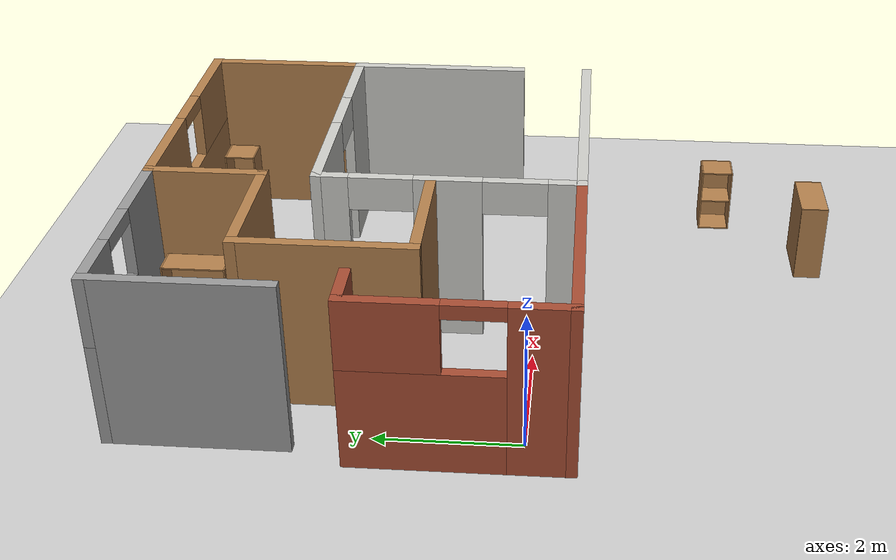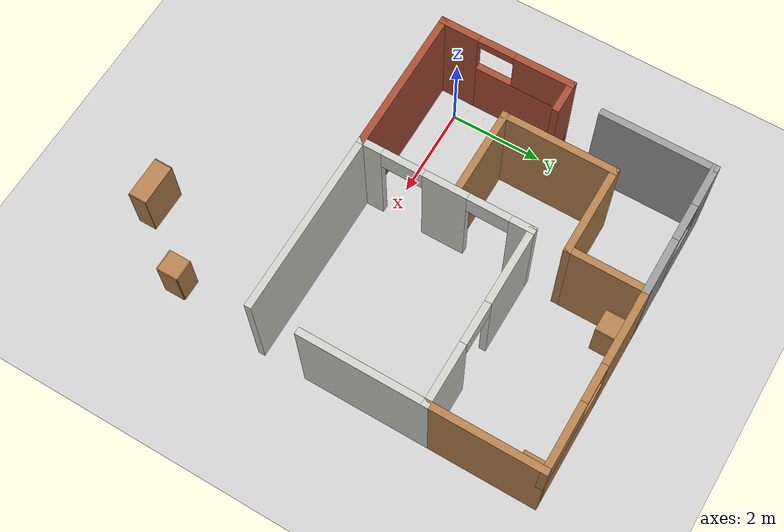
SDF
<sdf version="1.7">
 <world name="default">
  <model name="ground_plane">
   <static>1</static>
   <link name="link">
    <collision name="collision">
     <geometry><plane><normal>0 0 1</normal><size>100 100</size></plane></geometry>
     <surface><friction><ode><mu>100</mu><mu2>50</mu2></ode></friction></surface>
    </collision>
    <visual name="visual">
     <cast_shadows>0</cast_shadows>
     <geometry><plane><normal>0 0 1</normal><size>100 100</size></plane></geometry>
     <material>
      <script><uri>file://media/materials/scripts/gazebo.material</uri><name>Gazebo/Grey</name></script>
     </material>
    </visual>
   </link>
  </model>
  <model name="closed_room">
   <pose>2.96001 2.39593 0 0 -0 0</pose>
   <link name="Wall_0">
    <pose>-0.375 -1.175 0 0 -0 -1.5708</pose>
    <visual name="Wall_0_Visual_0">
     <pose>-1.648 0 1.25 0 -0 0</pose>
     <geometry><box><size>0.524006 0.15 2.5</size></box></geometry>
     <material>
      <script><uri>file://media/materials/scripts/gazebo.material</uri><name>Gazebo/CeilingTiled</name></script>
      <ambient>1 1 1 1</ambient>
     </material>
     <meta><layer>0</layer></meta>
    </visual>
    <collision name="Wall_0_Collision_0">
     <geometry><box><size>0.524006 0.15 2.5</size></box></geometry>
     <pose>-1.648 0 1.25 0 -0 0</pose>
    </collision>
    <visual name="Wall_0_Visual_1">
     <pose>-0.006994 0 1.25 0 -0 0</pose>
     <geometry><box><size>0.958001 0.15 2.5</size></box></geometry>
     <material>
      <script><uri>file://media/materials/scripts/gazebo.material</uri><name>Gazebo/CeilingTiled</name></script>
      <ambient>1 1 1 1</ambient>
     </material>
     <meta><layer>0</layer></meta>
    </visual>
    <collision name="Wall_0_Collision_1">
     <geometry><box><size>0.958001 0.15 2.5</size></box></geometry>
     <pose>-0.006994 0 1.25 0 -0 0</pose>
    </collision>
    <visual name="Wall_0_Visual_2">
     <pose>1.641 0 1.25 0 -0 0</pose>
     <geometry><box><size>0.537993 0.15 2.5</size></box></geometry>
     <material>
      <script><uri>file://media/materials/scripts/gazebo.material</uri><name>Gazebo/CeilingTiled</name></script>
      <ambient>1 1 1 1</ambient>
     </material>
     <meta><layer>0</layer></meta>
    </visual>
    <collision name="Wall_0_Collision_2">
     <geometry><box><size>0.537993 0.15 2.5</size></box></geometry>
     <pose>1.641 0 1.25 0 -0 0</pose>
    </collision>
    <visual name="Wall_0_Visual_3">
     <pose>-0.935994 0 2.25 0 -0 0</pose>
     <geometry><box><size>0.9 0.15 0.5</size></box></geometry>
     <material>
      <script><uri>file://media/materials/scripts/gazebo.material</uri><name>Gazebo/CeilingTiled</name></script>
      <ambient>1 1 1 1</ambient>
     </material>
     <meta><layer>0</layer></meta>
    </visual>
    <collision name="Wall_0_Collision_3">
     <geometry><box><size>0.9 0.15 0.5</size></box></geometry>
     <pose>-0.935994 0 2.25 0 -0 0</pose>
    </collision>
    <visual name="Wall_0_Visual_4">
     <pose>0.922007 0 2.25 0 -0 0</pose>
     <geometry><box><size>0.9 0.15 0.5</size></box></geometry>
     <material>
      <script><uri>file://media/materials/scripts/gazebo.material</uri><name>Gazebo/CeilingTiled</name></script>
      <ambient>1 1 1 1</ambient>
     </material>
     <meta><layer>0</layer></meta>
    </visual>
    <collision name="Wall_0_Collision_4">
     <geometry><box><size>0.9 0.15 0.5</size></box></geometry>
     <pose>0.922007 0 2.25 0 -0 0</pose>
    </collision>
   </link>
   <link name="Wall_1">
    <collision name="Wall_1_Collision">
     <geometry><box><size>4 0.15 2.5</size></box></geometry>
     <pose>0 0 1.25 0 -0 0</pose>
    </collision>
    <visual name="Wall_1_Visual">
     <pose>0 0 1.25 0 -0 0</pose>
     <geometry><box><size>4 0.15 2.5</size></box></geometry>
     <material>
      <script><uri>file://media/materials/scripts/gazebo.material</uri><name>Gazebo/CeilingTiled</name></script>
      <ambient>1 1 1 1</ambient>
     </material>
     <meta><layer>0</layer></meta>
    </visual>
    <pose>1.55 -3.01 0 0 -0 0</pose>
   </link>
   <link name="Wall_10">
    <pose>1.55 3.01 0 0 -0 0</pose>
    <visual name="Wall_10_Visual_0">
     <pose>-1.14373 0 1.25 0 -0 0</pose>
     <geometry><box><size>1.71255 0.15 2.5</size></box></geometry>
     <material>
      <script><uri>file://media/materials/scripts/gazebo.material</uri><name>Gazebo/Wood</name></script>
      <ambient>1 1 1 1</ambient>
     </material>
     <meta><layer>0</layer></meta>
    </visual>
    <collision name="Wall_10_Collision_0">
     <geometry><box><size>1.71255 0.15 2.5</size></box></geometry>
     <pose>-1.14373 0 1.25 0 -0 0</pose>
    </collision>
    <visual name="Wall_10_Visual_1">
     <pose>0.856275 0 0.75 0 -0 0</pose>
     <geometry><box><size>2.28745 0.15 1.5</size></box></geometry>
     <material>
      <script><uri>file://media/materials/scripts/gazebo.material</uri><name>Gazebo/Wood</name></script>
      <ambient>1 1 1 1</ambient>
     </material>
     <meta><layer>0</layer></meta>
    </visual>
    <collision name="Wall_10_Collision_1">
     <geometry><box><size>2.28745 0.15 1.5</size></box></geometry>
     <pose>0.856275 0 0.75 0 -0 0</pose>
    </collision>
    <visual name="Wall_10_Visual_2">
     <pose>1.25628 0 2 0 -0 0</pose>
     <geometry><box><size>1.48745 0.15 1</size></box></geometry>
     <material>
      <script><uri>file://media/materials/scripts/gazebo.material</uri><name>Gazebo/Wood</name></script>
      <ambient>1 1 1 1</ambient>
     </material>
     <meta><layer>0</layer></meta>
    </visual>
    <collision name="Wall_10_Collision_2">
     <geometry><box><size>1.48745 0.15 1</size></box></geometry>
     <pose>1.25628 0 2 0 -0 0</pose>
    </collision>
    <visual name="Wall_10_Visual_3">
     <pose>0.112549 0 2.4 0 -0 0</pose>
     <geometry><box><size>0.8 0.15 0.2</size></box></geometry>
     <material>
      <script><uri>file://media/materials/scripts/gazebo.material</uri><name>Gazebo/Wood</name></script>
      <ambient>1 1 1 1</ambient>
     </material>
     <meta><layer>0</layer></meta>
    </visual>
    <collision name="Wall_10_Collision_3">
     <geometry><box><size>0.8 0.15 0.2</size></box></geometry>
     <pose>0.112549 0 2.4 0 -0 0</pose>
    </collision>
   </link>
   <link name="Wall_11">
    <collision name="Wall_11_Collision">
     <geometry><box><size>2.5 0.15 2.5</size></box></geometry>
     <pose>0 0 1.25 0 -0 0</pose>
    </collision>
    <visual name="Wall_11_Visual">
     <pose>0 0 1.25 0 -0 0</pose>
     <geometry><box><size>2.5 0.15 2.5</size></box></geometry>
     <material>
      <script><uri>file://media/materials/scripts/gazebo.material</uri><name>Gazebo/Wood</name></script>
      <ambient>1 1 1 1</ambient>
     </material>
     <meta><layer>0</layer></meta>
    </visual>
    <pose>3.475 1.835 0 0 -0 -1.5708</pose>
   </link>
   <link name="Wall_13">
    <collision name="Wall_13_Collision">
     <geometry><box><size>1.75 0.15 2.5</size></box></geometry>
     <pose>0 0 1.25 0 -0 0</pose>
    </collision>
    <visual name="Wall_13_Visual">
     <pose>0 0 1.25 0 -0 0</pose>
     <geometry><box><size>1.75 0.15 2.5</size></box></geometry>
     <material>
      <script><uri>file://media/materials/scripts/gazebo.material</uri><name>Gazebo/Wood</name></script>
      <ambient>1 1 1 1</ambient>
     </material>
     <meta><layer>0</layer></meta>
    </visual>
    <pose>-0.375 2.21 0 0 -0 -1.5708</pose>
   </link>
   <link name="Wall_14">
    <collision name="Wall_14_Collision">
     <geometry><box><size>2 0.15 2.5</size></box></geometry>
     <pose>0 0 1.25 0 -0 0</pose>
    </collision>
    <visual name="Wall_14_Visual">
     <pose>0 0 1.25 0 -0 0</pose>
     <geometry><box><size>2 0.15 2.5</size></box></geometry>
     <material>
      <script><uri>file://media/materials/scripts/gazebo.material</uri><name>Gazebo/Wood</name></script>
      <ambient>1 1 1 1</ambient>
     </material>
     <meta><layer>0</layer></meta>
    </visual>
    <pose>-1.3 1.41 0 0 -0 3.14159</pose>
   </link>
   <link name="Wall_15">
    <collision name="Wall_15_Collision">
     <geometry><box><size>2.5 0.15 2.5</size></box></geometry>
     <pose>0 0 1.25 0 -0 0</pose>
    </collision>
    <visual name="Wall_15_Visual">
     <pose>0 0 1.25 0 -0 0</pose>
     <geometry><box><size>2.5 0.15 2.5</size></box></geometry>
     <material>
      <script><uri>file://media/materials/scripts/gazebo.material</uri><name>Gazebo/Wood</name></script>
      <ambient>1 1 1 1</ambient>
     </material>
     <meta><layer>0</layer></meta>
    </visual>
    <pose>-2.225 0.235 0 0 -0 -1.5708</pose>
   </link>
   <link name="Wall_16">
    <collision name="Wall_16_Collision">
     <geometry><box><size>2 0.15 2.5</size></box></geometry>
     <pose>0 0 1.25 0 -0 0</pose>
    </collision>
    <visual name="Wall_16_Visual">
     <pose>0 0 1.25 0 -0 0</pose>
     <geometry><box><size>2 0.15 2.5</size></box></geometry>
     <material>
      <script><uri>file://media/materials/scripts/gazebo.material</uri><name>Gazebo/Wood</name></script>
      <ambient>1 1 1 1</ambient>
     </material>
     <meta><layer>0</layer></meta>
    </visual>
    <pose>-1.3 -0.94 0 0 -0 0</pose>
   </link>
   <link name="Wall_18">
    <collision name="Wall_18_Collision">
     <geometry><box><size>3.25 0.15 2.5</size></box></geometry>
     <pose>0 0 1.25 0 -0 0</pose>
    </collision>
    <visual name="Wall_18_Visual">
     <pose>0 0 1.25 0 -0 0</pose>
     <geometry><box><size>3.25 0.15 2.5</size></box></geometry>
     <material>
      <script><uri>file://media/materials/scripts/gazebo.material</uri><name>Gazebo/Bricks</name></script>
      <ambient>1 1 1 1</ambient>
     </material>
     <meta><layer>0</layer></meta>
    </visual>
    <pose>-1.925 -3.01 0 0 -0 3.14159</pose>
   </link>
   <link name="Wall_19">
    <pose>-3.475 -1.585 0 0 -0 1.5708</pose>
    <visual name="Wall_19_Visual_0">
     <pose>-1.05478 0 1.25 0 -0 0</pose>
     <geometry><box><size>0.89045 0.15 2.5</size></box></geometry>
     <material>
      <script><uri>file://media/materials/scripts/gazebo.material</uri><name>Gazebo/Bricks</name></script>
      <ambient>1 1 1 1</ambient>
     </material>
     <meta><layer>0</layer></meta>
    </visual>
    <collision name="Wall_19_Collision_0">
     <geometry><box><size>0.89045 0.15 2.5</size></box></geometry>
     <pose>-1.05478 0 1.25 0 -0 0</pose>
    </collision>
    <visual name="Wall_19_Visual_1">
     <pose>0.445225 0 0.75 0 -0 0</pose>
     <geometry><box><size>2.10955 0.15 1.5</size></box></geometry>
     <material>
      <script><uri>file://media/materials/scripts/gazebo.material</uri><name>Gazebo/Bricks</name></script>
      <ambient>1 1 1 1</ambient>
     </material>
     <meta><layer>0</layer></meta>
    </visual>
    <collision name="Wall_19_Collision_1">
     <geometry><box><size>2.10955 0.15 1.5</size></box></geometry>
     <pose>0.445225 0 0.75 0 -0 0</pose>
    </collision>
    <visual name="Wall_19_Visual_2">
     <pose>0.845225 0 2 0 -0 0</pose>
     <geometry><box><size>1.30955 0.15 1</size></box></geometry>
     <material>
      <script><uri>file://media/materials/scripts/gazebo.material</uri><name>Gazebo/Bricks</name></script>
      <ambient>1 1 1 1</ambient>
     </material>
     <meta><layer>0</layer></meta>
    </visual>
    <collision name="Wall_19_Collision_2">
     <geometry><box><size>1.30955 0.15 1</size></box></geometry>
     <pose>0.845225 0 2 0 -0 0</pose>
    </collision>
    <visual name="Wall_19_Visual_3">
     <pose>-0.20955 0 2.4 0 -0 0</pose>
     <geometry><box><size>0.8 0.15 0.2</size></box></geometry>
     <material>
      <script><uri>file://media/materials/scripts/gazebo.material</uri><name>Gazebo/Bricks</name></script>
      <ambient>1 1 1 1</ambient>
     </material>
     <meta><layer>0</layer></meta>
    </visual>
    <collision name="Wall_19_Collision_3">
     <geometry><box><size>0.8 0.15 0.2</size></box></geometry>
     <pose>-0.20955 0 2.4 0 -0 0</pose>
    </collision>
   </link>
   <link name="Wall_21">
    <collision name="Wall_21_Collision">
     <geometry><box><size>0.75 0.15 2.5</size></box></geometry>
     <pose>0 0 1.25 0 -0 0</pose>
    </collision>
    <visual name="Wall_21_Visual">
     <pose>0 0 1.25 0 -0 0</pose>
     <geometry><box><size>0.75 0.15 2.5</size></box></geometry>
     <material>
      <script><uri>file://media/materials/scripts/gazebo.material</uri><name>Gazebo/Bricks</name></script>
      <ambient>1 1 1 1</ambient>
     </material>
     <meta><layer>0</layer></meta>
    </visual>
    <pose>-3.175 -0.16 0 0 -0 0</pose>
   </link>
   <link name="Wall_29">
    <pose>-1.8 3.01 0 0 -0 3.14159</pose>
    <visual name="Wall_29_Visual_0">
     <pose>-0.881653 0 1.25 0 -0 0</pose>
     <geometry><box><size>1.23669 0.15 2.5</size></box></geometry>
     <material>
      <script><uri>file://media/materials/scripts/gazebo.material</uri><name>Gazebo/Grey</name></script>
      <ambient>1 1 1 1</ambient>
     </material>
     <meta><layer>0</layer></meta>
    </visual>
    <collision name="Wall_29_Collision_0">
     <geometry><box><size>1.23669 0.15 2.5</size></box></geometry>
     <pose>-0.881653 0 1.25 0 -0 0</pose>
    </collision>
    <visual name="Wall_29_Visual_1">
     <pose>0.618347 0 0.75 0 -0 0</pose>
     <geometry><box><size>1.76331 0.15 1.5</size></box></geometry>
     <material>
      <script><uri>file://media/materials/scripts/gazebo.material</uri><name>Gazebo/Grey</name></script>
      <ambient>1 1 1 1</ambient>
     </material>
     <meta><layer>0</layer></meta>
    </visual>
    <collision name="Wall_29_Collision_1">
     <geometry><box><size>1.76331 0.15 1.5</size></box></geometry>
     <pose>0.618347 0 0.75 0 -0 0</pose>
    </collision>
    <visual name="Wall_29_Visual_2">
     <pose>1.01835 0 2 0 -0 0</pose>
     <geometry><box><size>0.963306 0.15 1</size></box></geometry>
     <material>
      <script><uri>file://media/materials/scripts/gazebo.material</uri><name>Gazebo/Grey</name></script>
      <ambient>1 1 1 1</ambient>
     </material>
     <meta><layer>0</layer></meta>
    </visual>
    <collision name="Wall_29_Collision_2">
     <geometry><box><size>0.963306 0.15 1</size></box></geometry>
     <pose>1.01835 0 2 0 -0 0</pose>
    </collision>
    <visual name="Wall_29_Visual_3">
     <pose>0.136694 0 2.4 0 -0 0</pose>
     <geometry><box><size>0.8 0.15 0.2</size></box></geometry>
     <material>
      <script><uri>file://media/materials/scripts/gazebo.material</uri><name>Gazebo/Grey</name></script>
      <ambient>1 1 1 1</ambient>
     </material>
     <meta><layer>0</layer></meta>
    </visual>
    <collision name="Wall_29_Collision_3">
     <geometry><box><size>0.8 0.15 0.2</size></box></geometry>
     <pose>0.136694 0 2.4 0 -0 0</pose>
    </collision>
   </link>
   <link name="Wall_30">
    <collision name="Wall_30_Collision">
     <geometry><box><size>2.5 0.15 2.5</size></box></geometry>
     <pose>0 0 1.25 0 -0 0</pose>
    </collision>
    <visual name="Wall_30_Visual">
     <pose>0 0 1.25 0 -0 0</pose>
     <geometry><box><size>2.5 0.15 2.5</size></box></geometry>
     <material>
      <script><uri>file://media/materials/scripts/gazebo.material</uri><name>Gazebo/Grey</name></script>
      <ambient>1 1 1 1</ambient>
     </material>
     <meta><layer>0</layer></meta>
    </visual>
    <pose>-3.225 1.835 0 0 -0 -1.5708</pose>
   </link>
   <link name="Wall_6">
    <pose>1.55 0.66 0 0 -0 0</pose>
    <visual name="Wall_6_Visual_0">
     <pose>-1.1325 0 1.25 0 -0 0</pose>
     <geometry><box><size>1.735 0.15 2.5</size></box></geometry>
     <material>
      <script><uri>file://media/materials/scripts/gazebo.material</uri><name>Gazebo/CeilingTiled</name></script>
      <ambient>1 1 1 1</ambient>
     </material>
     <meta><layer>0</layer></meta>
    </visual>
    <collision name="Wall_6_Collision_0">
     <geometry><box><size>1.735 0.15 2.5</size></box></geometry>
     <pose>-1.1325 0 1.25 0 -0 0</pose>
    </collision>
    <visual name="Wall_6_Visual_1">
     <pose>1.3175 0 1.25 0 -0 0</pose>
     <geometry><box><size>1.365 0.15 2.5</size></box></geometry>
     <material>
      <script><uri>file://media/materials/scripts/gazebo.material</uri><name>Gazebo/CeilingTiled</name></script>
      <ambient>1 1 1 1</ambient>
     </material>
     <meta><layer>0</layer></meta>
    </visual>
    <collision name="Wall_6_Collision_1">
     <geometry><box><size>1.365 0.15 2.5</size></box></geometry>
     <pose>1.3175 0 1.25 0 -0 0</pose>
    </collision>
    <visual name="Wall_6_Visual_2">
     <pose>0.185 0 2.25 0 -0 0</pose>
     <geometry><box><size>0.9 0.15 0.5</size></box></geometry>
     <material>
      <script><uri>file://media/materials/scripts/gazebo.material</uri><name>Gazebo/CeilingTiled</name></script>
      <ambient>1 1 1 1</ambient>
     </material>
     <meta><layer>0</layer></meta>
    </visual>
    <collision name="Wall_6_Collision_2">
     <geometry><box><size>0.9 0.15 0.5</size></box></geometry>
     <pose>0.185 0 2.25 0 -0 0</pose>
    </collision>
   </link>
   <link name="Wall_7">
    <collision name="Wall_7_Collision">
     <geometry><box><size>2.75 0.15 2.5</size></box></geometry>
     <pose>0 0 1.25 0 -0 0</pose>
    </collision>
    <visual name="Wall_7_Visual">
     <pose>0 0 1.25 0 -0 0</pose>
     <geometry><box><size>2.75 0.15 2.5</size></box></geometry>
     <material>
      <script><uri>file://media/materials/scripts/gazebo.material</uri><name>Gazebo/CeilingTiled</name></script>
      <ambient>1 1 1 1</ambient>
     </material>
     <meta><layer>0</layer></meta>
    </visual>
    <pose>3.475 -0.64 0 0 -0 -1.5708</pose>
   </link>
   <static>1</static>
  </model>
  <model name="bookshelf_1">
   <static>1</static>
   <link name="link">
    <inertial><mass>1</mass></inertial>
    <collision name="back">
     <pose>0 0.005 0.6 0 -0 0</pose>
     <geometry><box><size>0.9 0.01 1.2</size></box></geometry>
    </collision>
    <visual name="visual1">
     <pose>0 0.005 0.6 0 -0 0</pose>
     <geometry><box><size>0.9 0.01 1.2</size></box></geometry>
     <material>
      <script><uri>file://media/materials/scripts/gazebo.material</uri><name>Gazebo/Wood</name></script>
     </material>
    </visual>
    <collision name="left_side">
     <pose>0.45 -0.195 0.6 0 -0 0</pose>
     <geometry><box><size>0.02 0.4 1.2</size></box></geometry>
    </collision>
    <visual name="visual2">
     <pose>0.45 -0.195 0.6 0 -0 0</pose>
     <geometry><box><size>0.02 0.4 1.2</size></box></geometry>
     <material>
      <script><uri>file://media/materials/scripts/gazebo.material</uri><name>Gazebo/Wood</name></script>
     </material>
    </visual>
    <collision name="right_side">
     <pose>-0.45 -0.195 0.6 0 -0 0</pose>
     <geometry><box><size>0.02 0.4 1.2</size></box></geometry>
    </collision>
    <visual name="visual3">
     <pose>-0.45 -0.195 0.6 0 -0 0</pose>
     <geometry><box><size>0.02 0.4 1.2</size></box></geometry>
     <material>
      <script><uri>file://media/materials/scripts/gazebo.material</uri><name>Gazebo/Wood</name></script>
     </material>
    </visual>
    <collision name="bottom">
     <pose>0 -0.195 0.03 0 -0 0</pose>
     <geometry><box><size>0.88 0.4 0.06</size></box></geometry>
    </collision>
    <visual name="visual4">
     <pose>0 -0.195 0.03 0 -0 0</pose>
     <geometry><box><size>0.88 0.4 0.06</size></box></geometry>
     <material>
      <script><uri>file://media/materials/scripts/gazebo.material</uri><name>Gazebo/Wood</name></script>
     </material>
    </visual>
    <collision name="top">
     <pose>0 -0.195 1.19 0 -0 0</pose>
     <geometry><box><size>0.88 0.4 0.02</size></box></geometry>
    </collision>
    <visual name="visual5">
     <pose>0 -0.195 1.19 0 -0 0</pose>
     <geometry><box><size>0.88 0.4 0.02</size></box></geometry>
     <material>
      <script><uri>file://media/materials/scripts/gazebo.material</uri><name>Gazebo/Wood</name></script>
     </material>
    </visual>
    <collision name="low_shelf">
     <pose>0 -0.195 0.43 0 -0 0</pose>
     <geometry><box><size>0.88 0.4 0.02</size></box></geometry>
    </collision>
    <visual name="visual6">
     <pose>0 -0.195 0.43 0 -0 0</pose>
     <geometry><box><size>0.88 0.4 0.02</size></box></geometry>
     <material>
      <script><uri>file://media/materials/scripts/gazebo.material</uri><name>Gazebo/Wood</name></script>
     </material>
    </visual>
    <collision name="high_shelf">
     <pose>0 -0.195 0.8 0 -0 0</pose>
     <geometry><box><size>0.88 0.4 0.02</size></box></geometry>
    </collision>
    <visual name="visual7">
     <pose>0 -0.195 0.8 0 -0 0</pose>
     <geometry><box><size>0.88 0.4 0.02</size></box></geometry>
     <material>
      <script><uri>file://media/materials/scripts/gazebo.material</uri><name>Gazebo/Wood</name></script>
     </material>
    </visual>
   </link>
   <pose>4.89263 -3.94786 0 0 -0 0</pose>
  </model>
  <model name="cabinet_0">
   <static>1</static>
   <link name="cabinet_bottom_plate">
    <inertial>
     <pose>0 0 -1 0 -0 0</pose>
     <inertia><ixx>2.05</ixx><ixy>0</ixy><ixz>0</ixz><iyy>2.05</iyy><iyz>0</iyz><izz>2.05</izz></inertia>
     <mass>25</mass>
    </inertial>
    <collision name="cabinet_bottom_plate_geom">
     <pose>0 0 0.01 0 -0 0</pose>
     <geometry><box><size>0.45 0.45 0.02</size></box></geometry>
    </collision>
    <visual name="cabinet_bottom_plate_geom_visual">
     <pose>0 0 0.01 0 -0 0</pose>
     <geometry><box><size>0.45 0.45 0.02</size></box></geometry>
     <material>
      <script><uri>file://media/materials/scripts/gazebo.material</uri><name>Gazebo/Wood</name></script>
     </material>
    </visual>
    <collision name="cabinet_bottom_plate_geom_cabinet_back_plate">
     <pose>0.235 0 0.51 0 -0 0</pose>
     <geometry><box><size>0.02 0.45 1.02</size></box></geometry>
    </collision>
    <visual name="cabinet_bottom_plate_geom_cabinet_back_plate_visual">
     <pose>0.235 0 0.51 0 -0 0</pose>
     <geometry><box><size>0.02 0.45 1.02</size></box></geometry>
     <material>
      <script><uri>file://media/materials/scripts/gazebo.material</uri><name>Gazebo/Wood</name></script>
     </material>
    </visual>
    <collision name="cabinet_bottom_plate_geom_cabinet_left_plate">
     <pose>0 0.235 0.51 0 -0 0</pose>
     <geometry><box><size>0.45 0.02 1.02</size></box></geometry>
    </collision>
    <visual name="cabinet_bottom_plate_geom_cabinet_left_plate_visual">
     <pose>0 0.235 0.51 0 -0 0</pose>
     <geometry><box><size>0.45 0.02 1.02</size></box></geometry>
     <material>
      <script><uri>file://media/materials/scripts/gazebo.material</uri><name>Gazebo/Wood</name></script>
     </material>
    </visual>
    <collision name="cabinet_bottom_plate_geom_cabinet_middle_plate">
     <pose>0 0 0.51 0 -0 0</pose>
     <geometry><box><size>0.45 0.45 0.02</size></box></geometry>
    </collision>
    <visual name="cabinet_bottom_plate_geom_cabinet_middle_plate_visual">
     <pose>0 0 0.51 0 -0 0</pose>
     <geometry><box><size>0.45 0.45 0.02</size></box></geometry>
     <material>
      <script><uri>file://media/materials/scripts/gazebo.material</uri><name>Gazebo/Wood</name></script>
     </material>
    </visual>
    <collision name="cabinet_bottom_plate_geom_cabinet_right_plate">
     <pose>0 -0.235 0.51 0 -0 0</pose>
     <geometry><box><size>0.45 0.02 1.02</size></box></geometry>
    </collision>
    <visual name="cabinet_bottom_plate_geom_cabinet_right_plate_visual">
     <pose>0 -0.235 0.51 0 -0 0</pose>
     <geometry><box><size>0.45 0.02 1.02</size></box></geometry>
     <material>
      <script><uri>file://media/materials/scripts/gazebo.material</uri><name>Gazebo/Wood</name></script>
     </material>
    </visual>
    <collision name="cabinet_bottom_plate_geom_cabinet_top_plate">
     <pose>0 0 1.01 0 -0 0</pose>
     <geometry><box><size>0.45 0.45 0.02</size></box></geometry>
    </collision>
    <visual name="cabinet_bottom_plate_geom_cabinet_top_plate_visual">
     <pose>0 0 1.01 0 -0 0</pose>
     <geometry><box><size>0.45 0.45 0.02</size></box></geometry>
     <material>
      <script><uri>file://media/materials/scripts/gazebo.material</uri><name>Gazebo/Wood</name></script>
     </material>
    </visual>
   </link>
   <pose>6.10288 5.05822 0 0 -0 0</pose>
  </model>
  <model name="cabinet_1">
   <static>1</static>
   <link name="cabinet_bottom_plate">
    <inertial>
     <pose>0 0 -1 0 -0 0</pose>
     <inertia><ixx>2.05</ixx><ixy>0</ixy><ixz>0</ixz><iyy>2.05</iyy><iyz>0</iyz><izz>2.05</izz></inertia>
     <mass>25</mass>
    </inertial>
    <collision name="cabinet_bottom_plate_geom">
     <pose>0 0 0.01 0 -0 0</pose>
     <geometry><box><size>0.45 0.45 0.02</size></box></geometry>
    </collision>
    <visual name="cabinet_bottom_plate_geom_visual">
     <pose>0 0 0.01 0 -0 0</pose>
     <geometry><box><size>0.45 0.45 0.02</size></box></geometry>
     <material>
      <script><uri>file://media/materials/scripts/gazebo.material</uri><name>Gazebo/Wood</name></script>
     </material>
    </visual>
    <collision name="cabinet_bottom_plate_geom_cabinet_back_plate">
     <pose>0.235 0 0.51 0 -0 0</pose>
     <geometry><box><size>0.02 0.45 1.02</size></box></geometry>
    </collision>
    <visual name="cabinet_bottom_plate_geom_cabinet_back_plate_visual">
     <pose>0.235 0 0.51 0 -0 0</pose>
     <geometry><box><size>0.02 0.45 1.02</size></box></geometry>
     <material>
      <script><uri>file://media/materials/scripts/gazebo.material</uri><name>Gazebo/Wood</name></script>
     </material>
    </visual>
    <collision name="cabinet_bottom_plate_geom_cabinet_left_plate">
     <pose>0 0.235 0.51 0 -0 0</pose>
     <geometry><box><size>0.45 0.02 1.02</size></box></geometry>
    </collision>
    <visual name="cabinet_bottom_plate_geom_cabinet_left_plate_visual">
     <pose>0 0.235 0.51 0 -0 0</pose>
     <geometry><box><size>0.45 0.02 1.02</size></box></geometry>
     <material>
      <script><uri>file://media/materials/scripts/gazebo.material</uri><name>Gazebo/Wood</name></script>
     </material>
    </visual>
    <collision name="cabinet_bottom_plate_geom_cabinet_middle_plate">
     <pose>0 0 0.51 0 -0 0</pose>
     <geometry><box><size>0.45 0.45 0.02</size></box></geometry>
    </collision>
    <visual name="cabinet_bottom_plate_geom_cabinet_middle_plate_visual">
     <pose>0 0 0.51 0 -0 0</pose>
     <geometry><box><size>0.45 0.45 0.02</size></box></geometry>
     <material>
      <script><uri>file://media/materials/scripts/gazebo.material</uri><name>Gazebo/Wood</name></script>
     </material>
    </visual>
    <collision name="cabinet_bottom_plate_geom_cabinet_right_plate">
     <pose>0 -0.235 0.51 0 -0 0</pose>
     <geometry><box><size>0.45 0.02 1.02</size></box></geometry>
    </collision>
    <visual name="cabinet_bottom_plate_geom_cabinet_right_plate_visual">
     <pose>0 -0.235 0.51 0 -0 0</pose>
     <geometry><box><size>0.45 0.02 1.02</size></box></geometry>
     <material>
      <script><uri>file://media/materials/scripts/gazebo.material</uri><name>Gazebo/Wood</name></script>
     </material>
    </visual>
    <collision name="cabinet_bottom_plate_geom_cabinet_top_plate">
     <pose>0 0 1.01 0 -0 0</pose>
     <geometry><box><size>0.45 0.45 0.02</size></box></geometry>
    </collision>
    <visual name="cabinet_bottom_plate_geom_cabinet_top_plate_visual">
     <pose>0 0 1.01 0 -0 0</pose>
     <geometry><box><size>0.45 0.45 0.02</size></box></geometry>
     <material>
      <script><uri>file://media/materials/scripts/gazebo.material</uri><name>Gazebo/Wood</name></script>
     </material>
    </visual>
   </link>
   <pose>2.91458 5.06902 0 0 -0 1.5708</pose>
  </model>
  <model name="bookshelf_3">
   <static>1</static>
   <link name="link">
    <inertial><mass>1</mass></inertial>
    <collision name="back">
     <pose>0 0.005 0.6 0 -0 0</pose>
     <geometry><box><size>0.9 0.01 1.2</size></box></geometry>
    </collision>
    <visual name="visual1">
     <pose>0 0.005 0.6 0 -0 0</pose>
     <geometry><box><size>0.9 0.01 1.2</size></box></geometry>
     <material>
      <script><uri>file://media/materials/scripts/gazebo.material</uri><name>Gazebo/Wood</name></script>
     </material>
    </visual>
    <collision name="left_side">
     <pose>0.45 -0.195 0.6 0 -0 0</pose>
     <geometry><box><size>0.02 0.4 1.2</size></box></geometry>
    </collision>
    <visual name="visual2">
     <pose>0.45 -0.195 0.6 0 -0 0</pose>
     <geometry><box><size>0.02 0.4 1.2</size></box></geometry>
     <material>
      <script><uri>file://media/materials/scripts/gazebo.material</uri><name>Gazebo/Wood</name></script>
     </material>
    </visual>
    <collision name="right_side">
     <pose>-0.45 -0.195 0.6 0 -0 0</pose>
     <geometry><box><size>0.02 0.4 1.2</size></box></geometry>
    </collision>
    <visual name="visual3">
     <pose>-0.45 -0.195 0.6 0 -0 0</pose>
     <geometry><box><size>0.02 0.4 1.2</size></box></geometry>
     <material>
      <script><uri>file://media/materials/scripts/gazebo.material</uri><name>Gazebo/Wood</name></script>
     </material>
    </visual>
    <collision name="bottom">
     <pose>0 -0.195 0.03 0 -0 0</pose>
     <geometry><box><size>0.88 0.4 0.06</size></box></geometry>
    </collision>
    <visual name="visual4">
     <pose>0 -0.195 0.03 0 -0 0</pose>
     <geometry><box><size>0.88 0.4 0.06</size></box></geometry>
     <material>
      <script><uri>file://media/materials/scripts/gazebo.material</uri><name>Gazebo/Wood</name></script>
     </material>
    </visual>
    <collision name="top">
     <pose>0 -0.195 1.19 0 -0 0</pose>
     <geometry><box><size>0.88 0.4 0.02</size></box></geometry>
    </collision>
    <visual name="visual5">
     <pose>0 -0.195 1.19 0 -0 0</pose>
     <geometry><box><size>0.88 0.4 0.02</size></box></geometry>
     <material>
      <script><uri>file://media/materials/scripts/gazebo.material</uri><name>Gazebo/Wood</name></script>
     </material>
    </visual>
    <collision name="low_shelf">
     <pose>0 -0.195 0.43 0 -0 0</pose>
     <geometry><box><size>0.88 0.4 0.02</size></box></geometry>
    </collision>
    <visual name="visual6">
     <pose>0 -0.195 0.43 0 -0 0</pose>
     <geometry><box><size>0.88 0.4 0.02</size></box></geometry>
     <material>
      <script><uri>file://media/materials/scripts/gazebo.material</uri><name>Gazebo/Wood</name></script>
     </material>
    </visual>
    <collision name="high_shelf">
     <pose>0 -0.195 0.8 0 -0 0</pose>
     <geometry><box><size>0.88 0.4 0.02</size></box></geometry>
    </collision>
    <visual name="visual7">
     <pose>0 -0.195 0.8 0 -0 0</pose>
     <geometry><box><size>0.88 0.4 0.02</size></box></geometry>
     <material>
      <script><uri>file://media/materials/scripts/gazebo.material</uri><name>Gazebo/Wood</name></script>
     </material>
    </visual>
   </link>
   <pose>2.46168 4.80122 0 0 0 -1.5708</pose>
  </model>
  <model name="cabinet_2">
   <static>1</static>
   <link name="cabinet_bottom_plate">
    <inertial>
     <pose>0 0 -1 0 -0 0</pose>
     <inertia><ixx>2.05</ixx><ixy>0</ixy><ixz>0</ixz><iyy>2.05</iyy><iyz>0</iyz><izz>2.05</izz></inertia>
     <mass>25</mass>
    </inertial>
    <collision name="cabinet_bottom_plate_geom">
     <pose>0 0 0.01 0 -0 0</pose>
     <geometry><box><size>0.45 0.45 0.02</size></box></geometry>
    </collision>
    <visual name="cabinet_bottom_plate_geom_visual">
     <pose>0 0 0.01 0 -0 0</pose>
     <geometry><box><size>0.45 0.45 0.02</size></box></geometry>
     <material>
      <script><uri>file://media/materials/scripts/gazebo.material</uri><name>Gazebo/Wood</name></script>
     </material>
    </visual>
    <collision name="cabinet_bottom_plate_geom_cabinet_back_plate">
     <pose>0.235 0 0.51 0 -0 0</pose>
     <geometry><box><size>0.02 0.45 1.02</size></box></geometry>
    </collision>
    <visual name="cabinet_bottom_plate_geom_cabinet_back_plate_visual">
     <pose>0.235 0 0.51 0 -0 0</pose>
     <geometry><box><size>0.02 0.45 1.02</size></box></geometry>
     <material>
      <script><uri>file://media/materials/scripts/gazebo.material</uri><name>Gazebo/Wood</name></script>
     </material>
    </visual>
    <collision name="cabinet_bottom_plate_geom_cabinet_left_plate">
     <pose>0 0.235 0.51 0 -0 0</pose>
     <geometry><box><size>0.45 0.02 1.02</size></box></geometry>
    </collision>
    <visual name="cabinet_bottom_plate_geom_cabinet_left_plate_visual">
     <pose>0 0.235 0.51 0 -0 0</pose>
     <geometry><box><size>0.45 0.02 1.02</size></box></geometry>
     <material>
      <script><uri>file://media/materials/scripts/gazebo.material</uri><name>Gazebo/Wood</name></script>
     </material>
    </visual>
    <collision name="cabinet_bottom_plate_geom_cabinet_middle_plate">
     <pose>0 0 0.51 0 -0 0</pose>
     <geometry><box><size>0.45 0.45 0.02</size></box></geometry>
    </collision>
    <visual name="cabinet_bottom_plate_geom_cabinet_middle_plate_visual">
     <pose>0 0 0.51 0 -0 0</pose>
     <geometry><box><size>0.45 0.45 0.02</size></box></geometry>
     <material>
      <script><uri>file://media/materials/scripts/gazebo.material</uri><name>Gazebo/Wood</name></script>
     </material>
    </visual>
    <collision name="cabinet_bottom_plate_geom_cabinet_right_plate">
     <pose>0 -0.235 0.51 0 -0 0</pose>
     <geometry><box><size>0.45 0.02 1.02</size></box></geometry>
    </collision>
    <visual name="cabinet_bottom_plate_geom_cabinet_right_plate_visual">
     <pose>0 -0.235 0.51 0 -0 0</pose>
     <geometry><box><size>0.45 0.02 1.02</size></box></geometry>
     <material>
      <script><uri>file://media/materials/scripts/gazebo.material</uri><name>Gazebo/Wood</name></script>
     </material>
    </visual>
    <collision name="cabinet_bottom_plate_geom_cabinet_top_plate">
     <pose>0 0 1.01 0 -0 0</pose>
     <geometry><box><size>0.45 0.45 0.02</size></box></geometry>
    </collision>
    <visual name="cabinet_bottom_plate_geom_cabinet_top_plate_visual">
     <pose>0 0 1.01 0 -0 0</pose>
     <geometry><box><size>0.45 0.45 0.02</size></box></geometry>
     <material>
      <script><uri>file://media/materials/scripts/gazebo.material</uri><name>Gazebo/Wood</name></script>
     </material>
    </visual>
   </link>
   <pose>6.09824 -2.79093 0 0 -0 0</pose>
  </model>
 </world>
</sdf>
